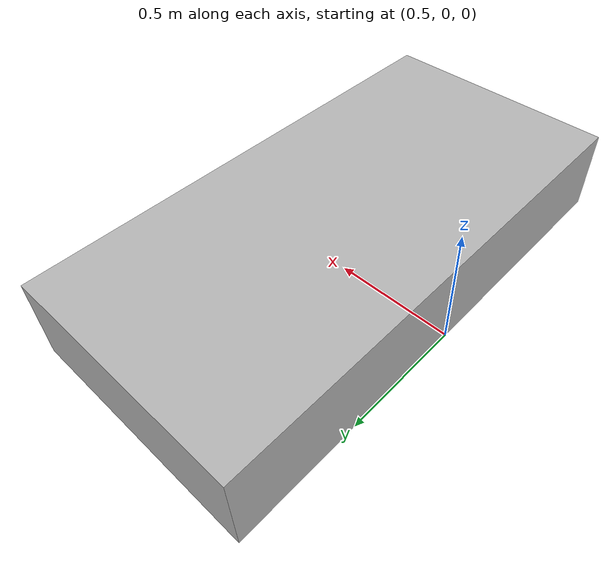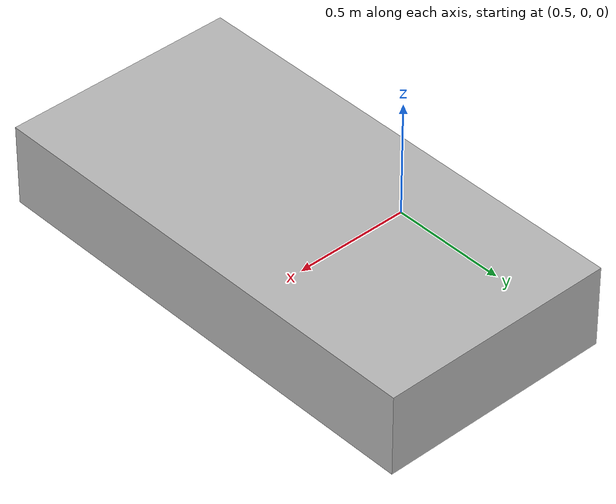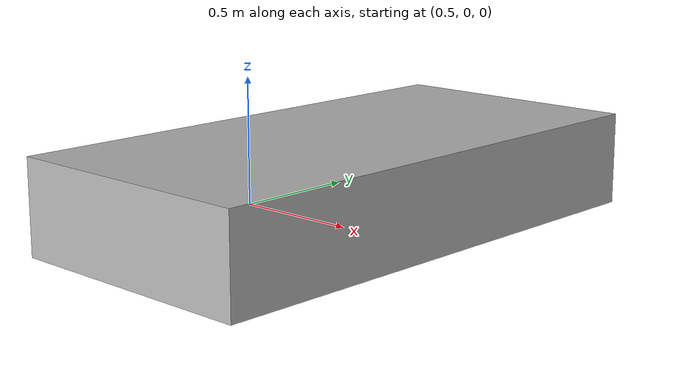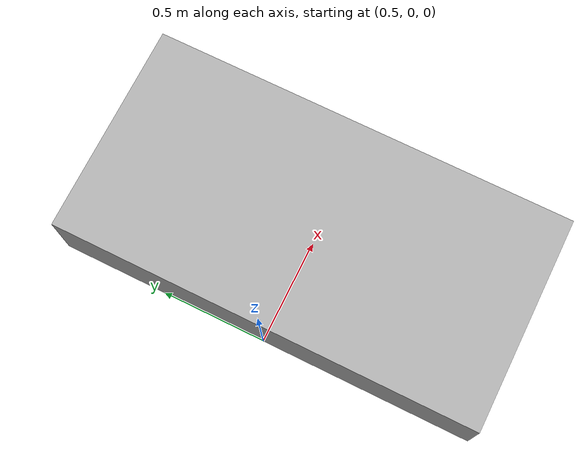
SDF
<?xml version="1.0"?>
<sdf version="1.4">
  <model name="platform_0.35">
    <pose>1.0 0 0.175 0 0 0</pose>
    <static>true</static>

    <link name="platform">
      <visual name="platform_visual">
        <pose>0 0 0 0 0 0</pose>
        <geometry>
          <box>
            <size>1 2 0.35</size>
          </box>
        </geometry>
      </visual>
      <collision name="platform_collision">
        <pose>0 0 0 0 0 0</pose>
        <geometry>
          <box>
            <size>1 2 0.35</size>
          </box>
        </geometry>
      </collision>
    </link>

  </model>
</sdf>
